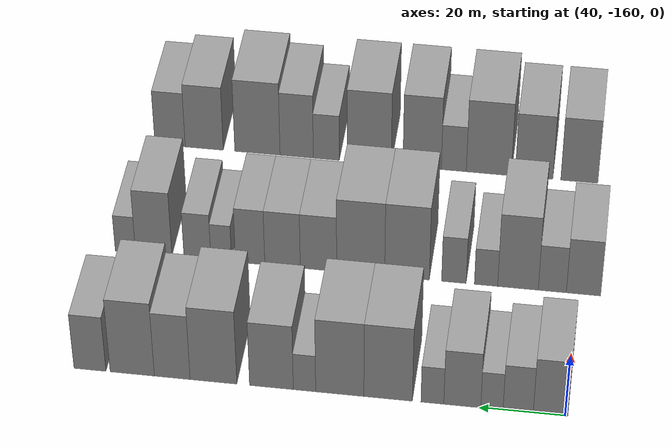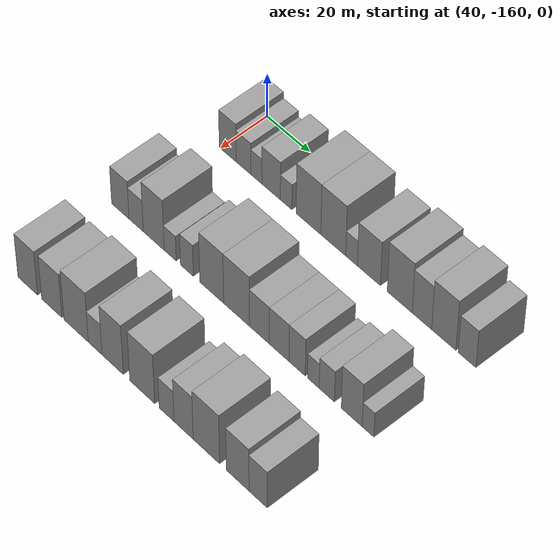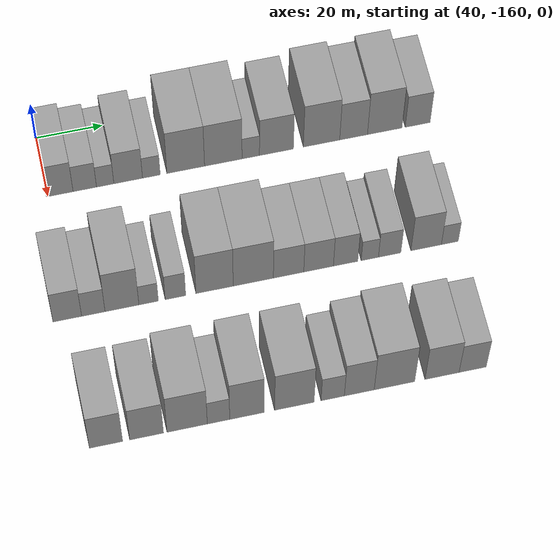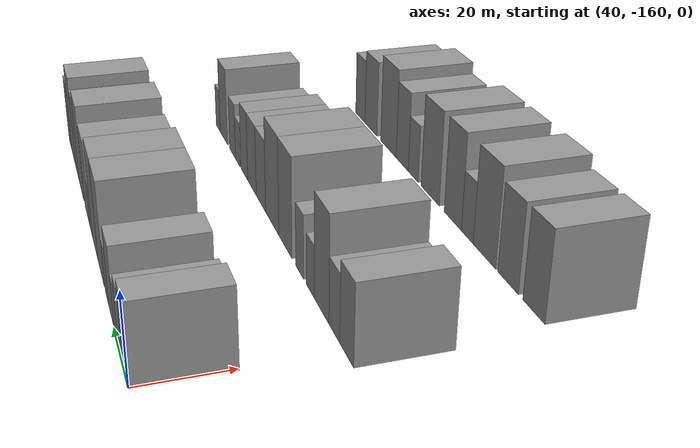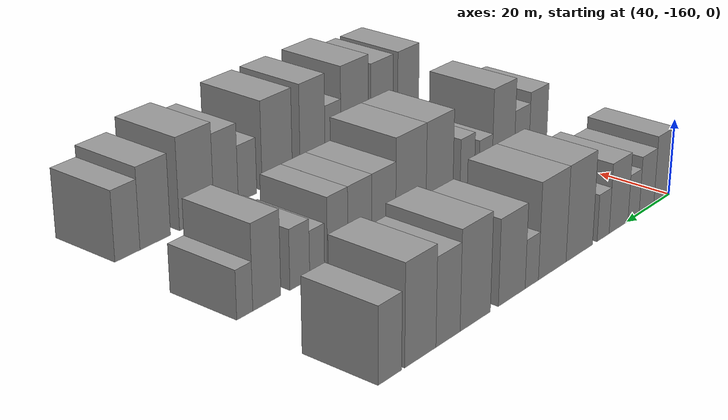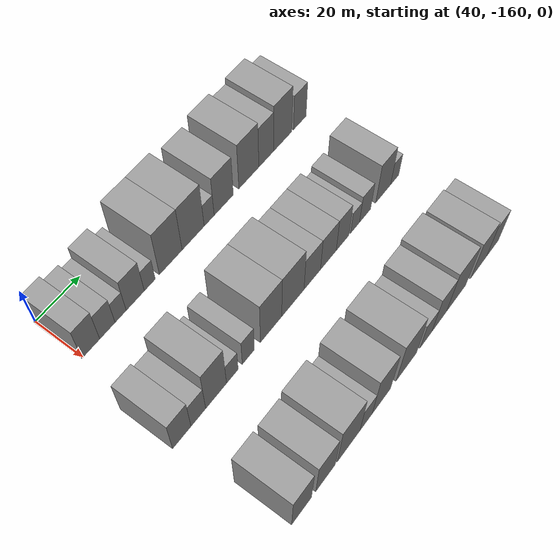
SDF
<sdf version="1.6">
 <world name="default">
  <model name="building_51">
   <static>1</static>
   <pose>50.0000 -156.5188 0 0.000000 0.000000 0.000000</pose>
   <link name="link">
    <pose>0 0 9.00 0 0 0</pose>
    <collision name="collision"><geometry><box><size>20.0000 8.0112 18.0000</size></box></geometry></collision>
    <visual name="visual">
     <cast_shadows>0</cast_shadows>
     <geometry><box><size>20.0000 8.0112 18.0000</size></box></geometry>
     <material>
      <script>
       <uri>model://grey_wall/materials/scripts</uri>
       <uri>model://grey_wall/materials/textures</uri>
       <name>vrc/grey_wall</name>
      </script>
     </material>
    </visual>
   </link>
  </model>
  <model name="building_52">
   <static>1</static>
   <pose>50.0000 -149.0171 0 0.000000 0.000000 0.000000</pose>
   <link name="link">
    <pose>0 0 7.50 0 0 0</pose>
    <collision name="collision"><geometry><box><size>20.0000 6.9921 15.0000</size></box></geometry></collision>
    <visual name="visual">
     <cast_shadows>0</cast_shadows>
     <geometry><box><size>20.0000 6.9921 15.0000</size></box></geometry>
     <material>
      <script>
       <uri>model://grey_wall/materials/scripts</uri>
       <uri>model://grey_wall/materials/textures</uri>
       <name>vrc/grey_wall</name>
      </script>
     </material>
    </visual>
   </link>
  </model>
  <model name="building_53">
   <static>1</static>
   <pose>50.0000 -142.9342 0 0.000000 0.000000 0.000000</pose>
   <link name="link">
    <pose>0 0 6.00 0 0 0</pose>
    <collision name="collision"><geometry><box><size>20.0000 5.1737 12.0000</size></box></geometry></collision>
    <visual name="visual">
     <cast_shadows>0</cast_shadows>
     <geometry><box><size>20.0000 5.1737 12.0000</size></box></geometry>
     <material>
      <script>
       <uri>model://grey_wall/materials/scripts</uri>
       <uri>model://grey_wall/materials/textures</uri>
       <name>vrc/grey_wall</name>
      </script>
     </material>
    </visual>
   </link>
  </model>
  <model name="building_54">
   <static>1</static>
   <pose>50.0000 -136.0577 0 0.000000 0.000000 0.000000</pose>
   <link name="link">
    <pose>0 0 9.00 0 0 0</pose>
    <collision name="collision"><geometry><box><size>20.0000 8.5793 18.0000</size></box></geometry></collision>
    <visual name="visual">
     <cast_shadows>0</cast_shadows>
     <geometry><box><size>20.0000 8.5793 18.0000</size></box></geometry>
     <material>
      <script>
       <uri>model://grey_wall/materials/scripts</uri>
       <uri>model://grey_wall/materials/textures</uri>
       <name>vrc/grey_wall</name>
      </script>
     </material>
    </visual>
   </link>
  </model>
  <model name="building_55">
   <static>1</static>
   <pose>50.0000 -129.1107 0 0.000000 0.000000 0.000000</pose>
   <link name="link">
    <pose>0 0 6.00 0 0 0</pose>
    <collision name="collision"><geometry><box><size>20.0000 5.3147 12.0000</size></box></geometry></collision>
    <visual name="visual">
     <cast_shadows>0</cast_shadows>
     <geometry><box><size>20.0000 5.3147 12.0000</size></box></geometry>
     <material>
      <script>
       <uri>model://grey_wall/materials/scripts</uri>
       <uri>model://grey_wall/materials/textures</uri>
       <name>vrc/grey_wall</name>
      </script>
     </material>
    </visual>
   </link>
  </model>
  <model name="building_56">
   <static>1</static>
   <pose>50.0000 -118.7897 0 0.000000 0.000000 0.000000</pose>
   <link name="link">
    <pose>0 0 12.00 0 0 0</pose>
    <collision name="collision"><geometry><box><size>20.0000 11.3274 24.0000</size></box></geometry></collision>
    <visual name="visual">
     <cast_shadows>0</cast_shadows>
     <geometry><box><size>20.0000 11.3274 24.0000</size></box></geometry>
     <material>
      <script>
       <uri>model://grey_wall/materials/scripts</uri>
       <uri>model://grey_wall/materials/textures</uri>
       <name>vrc/grey_wall</name>
      </script>
     </material>
    </visual>
   </link>
  </model>
  <model name="building_57">
   <static>1</static>
   <pose>50.0000 -107.4738 0 0.000000 0.000000 0.000000</pose>
   <link name="link">
    <pose>0 0 12.00 0 0 0</pose>
    <collision name="collision"><geometry><box><size>20.0000 11.3045 24.0000</size></box></geometry></collision>
    <visual name="visual">
     <cast_shadows>0</cast_shadows>
     <geometry><box><size>20.0000 11.3045 24.0000</size></box></geometry>
     <material>
      <script>
       <uri>model://grey_wall/materials/scripts</uri>
       <uri>model://grey_wall/materials/textures</uri>
       <name>vrc/grey_wall</name>
      </script>
     </material>
    </visual>
   </link>
  </model>
  <model name="building_58">
   <static>1</static>
   <pose>50.0000 -99.1936 0 0.000000 0.000000 0.000000</pose>
   <link name="link">
    <pose>0 0 6.00 0 0 0</pose>
    <collision name="collision"><geometry><box><size>20.0000 5.2559 12.0000</size></box></geometry></collision>
    <visual name="visual">
     <cast_shadows>0</cast_shadows>
     <geometry><box><size>20.0000 5.2559 12.0000</size></box></geometry>
     <material>
      <script>
       <uri>model://grey_wall/materials/scripts</uri>
       <uri>model://grey_wall/materials/textures</uri>
       <name>vrc/grey_wall</name>
      </script>
     </material>
    </visual>
   </link>
  </model>
  <model name="building_59">
   <static>1</static>
   <pose>50.0000 -91.4151 0 0.000000 0.000000 0.000000</pose>
   <link name="link">
    <pose>0 0 10.50 0 0 0</pose>
    <collision name="collision"><geometry><box><size>20.0000 10.3010 21.0000</size></box></geometry></collision>
    <visual name="visual">
     <cast_shadows>0</cast_shadows>
     <geometry><box><size>20.0000 10.3010 21.0000</size></box></geometry>
     <material>
      <script>
       <uri>model://grey_wall/materials/scripts</uri>
       <uri>model://grey_wall/materials/textures</uri>
       <name>vrc/grey_wall</name>
      </script>
     </material>
    </visual>
   </link>
  </model>
  <model name="building_60">
   <static>1</static>
   <pose>50.0000 -77.7323 0 0.000000 0.000000 0.000000</pose>
   <link name="link">
    <pose>0 0 12.00 0 0 0</pose>
    <collision name="collision"><geometry><box><size>20.0000 11.0646 24.0000</size></box></geometry></collision>
    <visual name="visual">
     <cast_shadows>0</cast_shadows>
     <geometry><box><size>20.0000 11.0646 24.0000</size></box></geometry>
     <material>
      <script>
       <uri>model://grey_wall/materials/scripts</uri>
       <uri>model://grey_wall/materials/textures</uri>
       <name>vrc/grey_wall</name>
      </script>
     </material>
    </visual>
   </link>
  </model>
  <model name="building_61">
   <static>1</static>
   <pose>50.0000 -67.9628 0 0.000000 0.000000 0.000000</pose>
   <link name="link">
    <pose>0 0 10.50 0 0 0</pose>
    <collision name="collision"><geometry><box><size>20.0000 8.4744 21.0000</size></box></geometry></collision>
    <visual name="visual">
     <cast_shadows>0</cast_shadows>
     <geometry><box><size>20.0000 8.4744 21.0000</size></box></geometry>
     <material>
      <script>
       <uri>model://grey_wall/materials/scripts</uri>
       <uri>model://grey_wall/materials/textures</uri>
       <name>vrc/grey_wall</name>
      </script>
     </material>
    </visual>
   </link>
  </model>
  <model name="building_62">
   <static>1</static>
   <pose>50.0000 -58.4521 0 0.000000 0.000000 0.000000</pose>
   <link name="link">
    <pose>0 0 12.00 0 0 0</pose>
    <collision name="collision"><geometry><box><size>20.0000 10.5471 24.0000</size></box></geometry></collision>
    <visual name="visual">
     <cast_shadows>0</cast_shadows>
     <geometry><box><size>20.0000 10.5471 24.0000</size></box></geometry>
     <material>
      <script>
       <uri>model://grey_wall/materials/scripts</uri>
       <uri>model://grey_wall/materials/textures</uri>
       <name>vrc/grey_wall</name>
      </script>
     </material>
    </visual>
   </link>
  </model>
  <model name="building_63">
   <static>1</static>
   <pose>50.0000 -48.3704 0 0.000000 0.000000 0.000000</pose>
   <link name="link">
    <pose>0 0 9.00 0 0 0</pose>
    <collision name="collision"><geometry><box><size>20.0000 7.6163 18.0000</size></box></geometry></collision>
    <visual name="visual">
     <cast_shadows>0</cast_shadows>
     <geometry><box><size>20.0000 7.6163 18.0000</size></box></geometry>
     <material>
      <script>
       <uri>model://grey_wall/materials/scripts</uri>
       <uri>model://grey_wall/materials/textures</uri>
       <name>vrc/grey_wall</name>
      </script>
     </material>
    </visual>
   </link>
  </model>
  <model name="building_179">
   <static>1</static>
   <pose>90.0000 -161.5292 0 0.000000 0.000000 0.000000</pose>
   <link name="link">
    <pose>0 0 9.00 0 0 0</pose>
    <collision name="collision"><geometry><box><size>20.0000 8.3050 18.0000</size></box></geometry></collision>
    <visual name="visual">
     <cast_shadows>0</cast_shadows>
     <geometry><box><size>20.0000 8.3050 18.0000</size></box></geometry>
     <material>
      <script>
       <uri>model://grey_wall/materials/scripts</uri>
       <uri>model://grey_wall/materials/textures</uri>
       <name>vrc/grey_wall</name>
      </script>
     </material>
    </visual>
   </link>
  </model>
  <model name="building_180">
   <static>1</static>
   <pose>90.0000 -153.9781 0 0.000000 0.000000 0.000000</pose>
   <link name="link">
    <pose>0 0 7.50 0 0 0</pose>
    <collision name="collision"><geometry><box><size>20.0000 6.7971 15.0000</size></box></geometry></collision>
    <visual name="visual">
     <cast_shadows>0</cast_shadows>
     <geometry><box><size>20.0000 6.7971 15.0000</size></box></geometry>
     <material>
      <script>
       <uri>model://grey_wall/materials/scripts</uri>
       <uri>model://grey_wall/materials/textures</uri>
       <name>vrc/grey_wall</name>
      </script>
     </material>
    </visual>
   </link>
  </model>
  <model name="building_181">
   <static>1</static>
   <pose>90.0000 -145.6504 0 0.000000 0.000000 0.000000</pose>
   <link name="link">
    <pose>0 0 12.00 0 0 0</pose>
    <collision name="collision"><geometry><box><size>20.0000 9.8584 24.0000</size></box></geometry></collision>
    <visual name="visual">
     <cast_shadows>0</cast_shadows>
     <geometry><box><size>20.0000 9.8584 24.0000</size></box></geometry>
     <material>
      <script>
       <uri>model://grey_wall/materials/scripts</uri>
       <uri>model://grey_wall/materials/textures</uri>
       <name>vrc/grey_wall</name>
      </script>
     </material>
    </visual>
   </link>
  </model>
  <model name="building_182">
   <static>1</static>
   <pose>90.0000 -137.8885 0 0.000000 0.000000 0.000000</pose>
   <link name="link">
    <pose>0 0 6.00 0 0 0</pose>
    <collision name="collision"><geometry><box><size>20.0000 5.6654 12.0000</size></box></geometry></collision>
    <visual name="visual">
     <cast_shadows>0</cast_shadows>
     <geometry><box><size>20.0000 5.6654 12.0000</size></box></geometry>
     <material>
      <script>
       <uri>model://grey_wall/materials/scripts</uri>
       <uri>model://grey_wall/materials/textures</uri>
       <name>vrc/grey_wall</name>
      </script>
     </material>
    </visual>
   </link>
  </model>
  <model name="building_183">
   <static>1</static>
   <pose>90.0000 -130.0543 0 0.000000 0.000000 0.000000</pose>
   <link name="link">
    <pose>0 0 7.50 0 0 0</pose>
    <collision name="collision"><geometry><box><size>20.0000 6.0030 15.0000</size></box></geometry></collision>
    <visual name="visual">
     <cast_shadows>0</cast_shadows>
     <geometry><box><size>20.0000 6.0030 15.0000</size></box></geometry>
     <material>
      <script>
       <uri>model://grey_wall/materials/scripts</uri>
       <uri>model://grey_wall/materials/textures</uri>
       <name>vrc/grey_wall</name>
      </script>
     </material>
    </visual>
   </link>
  </model>
  <model name="building_184">
   <static>1</static>
   <pose>90.0000 -118.5906 0 0.000000 0.000000 0.000000</pose>
   <link name="link">
    <pose>0 0 12.00 0 0 0</pose>
    <collision name="collision"><geometry><box><size>20.0000 10.9243 24.0000</size></box></geometry></collision>
    <visual name="visual">
     <cast_shadows>0</cast_shadows>
     <geometry><box><size>20.0000 10.9243 24.0000</size></box></geometry>
     <material>
      <script>
       <uri>model://grey_wall/materials/scripts</uri>
       <uri>model://grey_wall/materials/textures</uri>
       <name>vrc/grey_wall</name>
      </script>
     </material>
    </visual>
   </link>
  </model>
  <model name="building_185">
   <static>1</static>
   <pose>90.0000 -107.2223 0 0.000000 0.000000 0.000000</pose>
   <link name="link">
    <pose>0 0 12.00 0 0 0</pose>
    <collision name="collision"><geometry><box><size>20.0000 11.8123 24.0000</size></box></geometry></collision>
    <visual name="visual">
     <cast_shadows>0</cast_shadows>
     <geometry><box><size>20.0000 11.8123 24.0000</size></box></geometry>
     <material>
      <script>
       <uri>model://grey_wall/materials/scripts</uri>
       <uri>model://grey_wall/materials/textures</uri>
       <name>vrc/grey_wall</name>
      </script>
     </material>
    </visual>
   </link>
  </model>
  <model name="building_186">
   <static>1</static>
   <pose>90.0000 -96.8286 0 0.000000 0.000000 0.000000</pose>
   <link name="link">
    <pose>0 0 9.00 0 0 0</pose>
    <collision name="collision"><geometry><box><size>20.0000 8.9752 18.0000</size></box></geometry></collision>
    <visual name="visual">
     <cast_shadows>0</cast_shadows>
     <geometry><box><size>20.0000 8.9752 18.0000</size></box></geometry>
     <material>
      <script>
       <uri>model://grey_wall/materials/scripts</uri>
       <uri>model://grey_wall/materials/textures</uri>
       <name>vrc/grey_wall</name>
      </script>
     </material>
    </visual>
   </link>
  </model>
  <model name="building_187">
   <static>1</static>
   <pose>90.0000 -87.9574 0 0.000000 0.000000 0.000000</pose>
   <link name="link">
    <pose>0 0 9.00 0 0 0</pose>
    <collision name="collision"><geometry><box><size>20.0000 8.7671 18.0000</size></box></geometry></collision>
    <visual name="visual">
     <cast_shadows>0</cast_shadows>
     <geometry><box><size>20.0000 8.7671 18.0000</size></box></geometry>
     <material>
      <script>
       <uri>model://grey_wall/materials/scripts</uri>
       <uri>model://grey_wall/materials/textures</uri>
       <name>vrc/grey_wall</name>
      </script>
     </material>
    </visual>
   </link>
  </model>
  <model name="building_188">
   <static>1</static>
   <pose>90.0000 -79.9496 0 0.000000 0.000000 0.000000</pose>
   <link name="link">
    <pose>0 0 9.00 0 0 0</pose>
    <collision name="collision"><geometry><box><size>20.0000 7.2484 18.0000</size></box></geometry></collision>
    <visual name="visual">
     <cast_shadows>0</cast_shadows>
     <geometry><box><size>20.0000 7.2484 18.0000</size></box></geometry>
     <material>
      <script>
       <uri>model://grey_wall/materials/scripts</uri>
       <uri>model://grey_wall/materials/textures</uri>
       <name>vrc/grey_wall</name>
      </script>
     </material>
    </visual>
   </link>
  </model>
  <model name="building_189">
   <static>1</static>
   <pose>90.0000 -72.7634 0 0.000000 0.000000 0.000000</pose>
   <link name="link">
    <pose>0 0 6.00 0 0 0</pose>
    <collision name="collision"><geometry><box><size>20.0000 5.1242 12.0000</size></box></geometry></collision>
    <visual name="visual">
     <cast_shadows>0</cast_shadows>
     <geometry><box><size>20.0000 5.1242 12.0000</size></box></geometry>
     <material>
      <script>
       <uri>model://grey_wall/materials/scripts</uri>
       <uri>model://grey_wall/materials/textures</uri>
       <name>vrc/grey_wall</name>
      </script>
     </material>
    </visual>
   </link>
  </model>
  <model name="building_190">
   <static>1</static>
   <pose>90.0000 -66.8589 0 0.000000 0.000000 0.000000</pose>
   <link name="link">
    <pose>0 0 7.50 0 0 0</pose>
    <collision name="collision"><geometry><box><size>20.0000 6.6847 15.0000</size></box></geometry></collision>
    <visual name="visual">
     <cast_shadows>0</cast_shadows>
     <geometry><box><size>20.0000 6.6847 15.0000</size></box></geometry>
     <material>
      <script>
       <uri>model://grey_wall/materials/scripts</uri>
       <uri>model://grey_wall/materials/textures</uri>
       <name>vrc/grey_wall</name>
      </script>
     </material>
    </visual>
   </link>
  </model>
  <model name="building_191">
   <static>1</static>
   <pose>90.0000 -55.9741 0 0.000000 0.000000 0.000000</pose>
   <link name="link">
    <pose>0 0 10.50 0 0 0</pose>
    <collision name="collision"><geometry><box><size>20.0000 9.0850 21.0000</size></box></geometry></collision>
    <visual name="visual">
     <cast_shadows>0</cast_shadows>
     <geometry><box><size>20.0000 9.0850 21.0000</size></box></geometry>
     <material>
      <script>
       <uri>model://grey_wall/materials/scripts</uri>
       <uri>model://grey_wall/materials/textures</uri>
       <name>vrc/grey_wall</name>
      </script>
     </material>
    </visual>
   </link>
  </model>
  <model name="building_192">
   <static>1</static>
   <pose>90.0000 -48.8987 0 0.000000 0.000000 0.000000</pose>
   <link name="link">
    <pose>0 0 6.00 0 0 0</pose>
    <collision name="collision"><geometry><box><size>20.0000 5.0657 12.0000</size></box></geometry></collision>
    <visual name="visual">
     <cast_shadows>0</cast_shadows>
     <geometry><box><size>20.0000 5.0657 12.0000</size></box></geometry>
     <material>
      <script>
       <uri>model://grey_wall/materials/scripts</uri>
       <uri>model://grey_wall/materials/textures</uri>
       <name>vrc/grey_wall</name>
      </script>
     </material>
    </visual>
   </link>
  </model>
  <model name="building_322">
   <static>1</static>
   <pose>130.0000 -157.9068 0 0.000000 0.000000 0.000000</pose>
   <link name="link">
    <pose>0 0 10.50 0 0 0</pose>
    <collision name="collision"><geometry><box><size>20.0000 9.4076 21.0000</size></box></geometry></collision>
    <visual name="visual">
     <cast_shadows>0</cast_shadows>
     <geometry><box><size>20.0000 9.4076 21.0000</size></box></geometry>
     <material>
      <script>
       <uri>model://grey_wall/materials/scripts</uri>
       <uri>model://grey_wall/materials/textures</uri>
       <name>vrc/grey_wall</name>
      </script>
     </material>
    </visual>
   </link>
  </model>
  <model name="building_323">
   <static>1</static>
   <pose>130.0000 -146.4135 0 0.000000 0.000000 0.000000</pose>
   <link name="link">
    <pose>0 0 10.50 0 0 0</pose>
    <collision name="collision"><geometry><box><size>20.0000 9.5789 21.0000</size></box></geometry></collision>
    <visual name="visual">
     <cast_shadows>0</cast_shadows>
     <geometry><box><size>20.0000 9.5789 21.0000</size></box></geometry>
     <material>
      <script>
       <uri>model://grey_wall/materials/scripts</uri>
       <uri>model://grey_wall/materials/textures</uri>
       <name>vrc/grey_wall</name>
      </script>
     </material>
    </visual>
   </link>
  </model>
  <model name="building_324">
   <static>1</static>
   <pose>130.0000 -134.8944 0 0.000000 0.000000 0.000000</pose>
   <link name="link">
    <pose>0 0 12.00 0 0 0</pose>
    <collision name="collision"><geometry><box><size>20.0000 11.4594 24.0000</size></box></geometry></collision>
    <visual name="visual">
     <cast_shadows>0</cast_shadows>
     <geometry><box><size>20.0000 11.4594 24.0000</size></box></geometry>
     <material>
      <script>
       <uri>model://grey_wall/materials/scripts</uri>
       <uri>model://grey_wall/materials/textures</uri>
       <name>vrc/grey_wall</name>
      </script>
     </material>
    </visual>
   </link>
  </model>
  <model name="building_325">
   <static>1</static>
   <pose>130.0000 -125.9646 0 0.000000 0.000000 0.000000</pose>
   <link name="link">
    <pose>0 0 7.50 0 0 0</pose>
    <collision name="collision"><geometry><box><size>20.0000 6.4001 15.0000</size></box></geometry></collision>
    <visual name="visual">
     <cast_shadows>0</cast_shadows>
     <geometry><box><size>20.0000 6.4001 15.0000</size></box></geometry>
     <material>
      <script>
       <uri>model://grey_wall/materials/scripts</uri>
       <uri>model://grey_wall/materials/textures</uri>
       <name>vrc/grey_wall</name>
      </script>
     </material>
    </visual>
   </link>
  </model>
  <model name="building_326">
   <static>1</static>
   <pose>130.0000 -117.8555 0 0.000000 0.000000 0.000000</pose>
   <link name="link">
    <pose>0 0 12.00 0 0 0</pose>
    <collision name="collision"><geometry><box><size>20.0000 9.8183 24.0000</size></box></geometry></collision>
    <visual name="visual">
     <cast_shadows>0</cast_shadows>
     <geometry><box><size>20.0000 9.8183 24.0000</size></box></geometry>
     <material>
      <script>
       <uri>model://grey_wall/materials/scripts</uri>
       <uri>model://grey_wall/materials/textures</uri>
       <name>vrc/grey_wall</name>
      </script>
     </material>
    </visual>
   </link>
  </model>
  <model name="building_327">
   <static>1</static>
   <pose>130.0000 -104.2628 0 0.000000 0.000000 0.000000</pose>
   <link name="link">
    <pose>0 0 12.00 0 0 0</pose>
    <collision name="collision"><geometry><box><size>20.0000 11.3670 24.0000</size></box></geometry></collision>
    <visual name="visual">
     <cast_shadows>0</cast_shadows>
     <geometry><box><size>20.0000 11.3670 24.0000</size></box></geometry>
     <material>
      <script>
       <uri>model://grey_wall/materials/scripts</uri>
       <uri>model://grey_wall/materials/textures</uri>
       <name>vrc/grey_wall</name>
      </script>
     </material>
    </visual>
   </link>
  </model>
  <model name="building_328">
   <static>1</static>
   <pose>130.0000 -93.2230 0 0.000000 0.000000 0.000000</pose>
   <link name="link">
    <pose>0 0 7.50 0 0 0</pose>
    <collision name="collision"><geometry><box><size>20.0000 6.7126 15.0000</size></box></geometry></collision>
    <visual name="visual">
     <cast_shadows>0</cast_shadows>
     <geometry><box><size>20.0000 6.7126 15.0000</size></box></geometry>
     <material>
      <script>
       <uri>model://grey_wall/materials/scripts</uri>
       <uri>model://grey_wall/materials/textures</uri>
       <name>vrc/grey_wall</name>
      </script>
     </material>
    </visual>
   </link>
  </model>
  <model name="building_329">
   <static>1</static>
   <pose>130.0000 -85.5588 0 0.000000 0.000000 0.000000</pose>
   <link name="link">
    <pose>0 0 10.50 0 0 0</pose>
    <collision name="collision"><geometry><box><size>20.0000 8.6159 21.0000</size></box></geometry></collision>
    <visual name="visual">
     <cast_shadows>0</cast_shadows>
     <geometry><box><size>20.0000 8.6159 21.0000</size></box></geometry>
     <material>
      <script>
       <uri>model://grey_wall/materials/scripts</uri>
       <uri>model://grey_wall/materials/textures</uri>
       <name>vrc/grey_wall</name>
      </script>
     </material>
    </visual>
   </link>
  </model>
  <model name="building_330">
   <static>1</static>
   <pose>130.0000 -75.3850 0 0.000000 0.000000 0.000000</pose>
   <link name="link">
    <pose>0 0 12.00 0 0 0</pose>
    <collision name="collision"><geometry><box><size>20.0000 11.7319 24.0000</size></box></geometry></collision>
    <visual name="visual">
     <cast_shadows>0</cast_shadows>
     <geometry><box><size>20.0000 11.7319 24.0000</size></box></geometry>
     <material>
      <script>
       <uri>model://grey_wall/materials/scripts</uri>
       <uri>model://grey_wall/materials/textures</uri>
       <name>vrc/grey_wall</name>
      </script>
     </material>
    </visual>
   </link>
  </model>
  <model name="building_331">
   <static>1</static>
   <pose>130.0000 -61.5649 0 0.000000 0.000000 0.000000</pose>
   <link name="link">
    <pose>0 0 10.50 0 0 0</pose>
    <collision name="collision"><geometry><box><size>20.0000 9.9082 21.0000</size></box></geometry></collision>
    <visual name="visual">
     <cast_shadows>0</cast_shadows>
     <geometry><box><size>20.0000 9.9082 21.0000</size></box></geometry>
     <material>
      <script>
       <uri>model://grey_wall/materials/scripts</uri>
       <uri>model://grey_wall/materials/textures</uri>
       <name>vrc/grey_wall</name>
      </script>
     </material>
    </visual>
   </link>
  </model>
  <model name="building_332">
   <static>1</static>
   <pose>130.0000 -52.6525 0 0.000000 0.000000 0.000000</pose>
   <link name="link">
    <pose>0 0 9.00 0 0 0</pose>
    <collision name="collision"><geometry><box><size>20.0000 7.9168 18.0000</size></box></geometry></collision>
    <visual name="visual">
     <cast_shadows>0</cast_shadows>
     <geometry><box><size>20.0000 7.9168 18.0000</size></box></geometry>
     <material>
      <script>
       <uri>model://grey_wall/materials/scripts</uri>
       <uri>model://grey_wall/materials/textures</uri>
       <name>vrc/grey_wall</name>
      </script>
     </material>
    </visual>
   </link>
  </model>
 </world>
</sdf>
